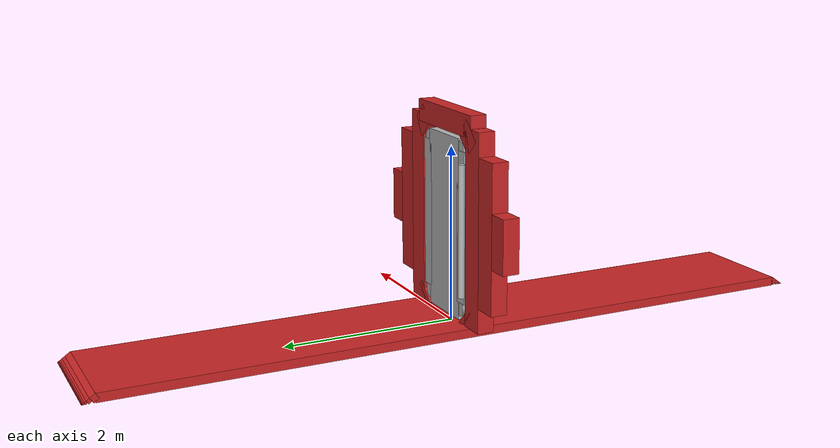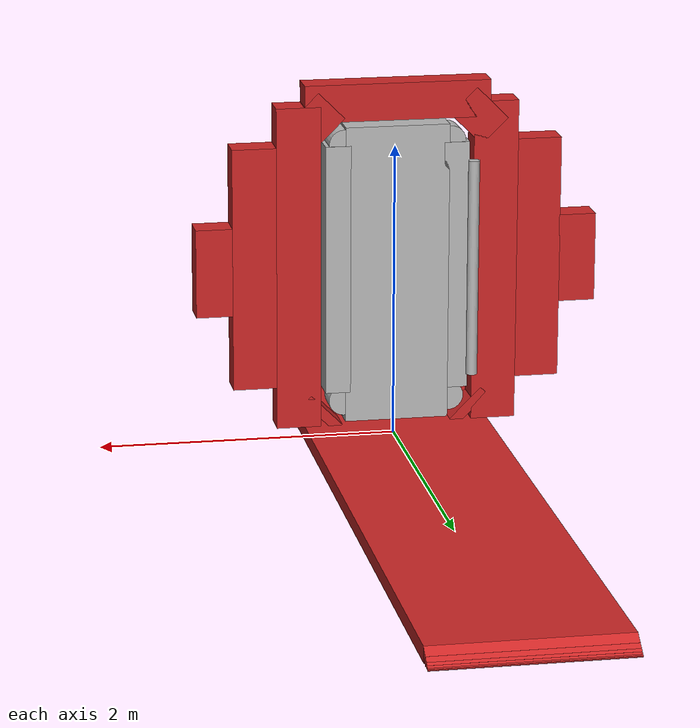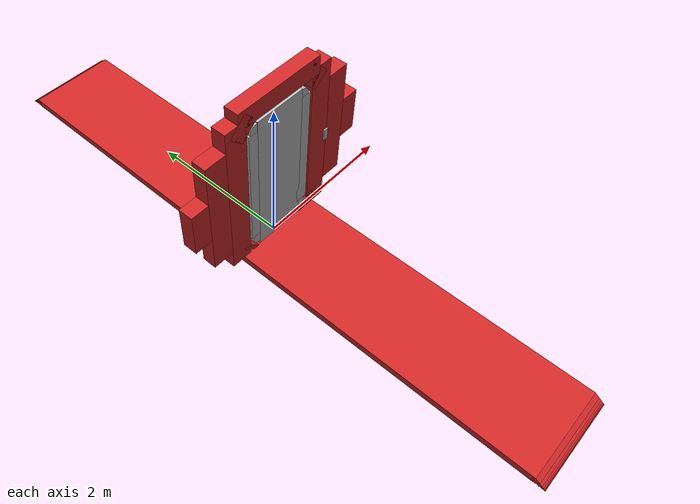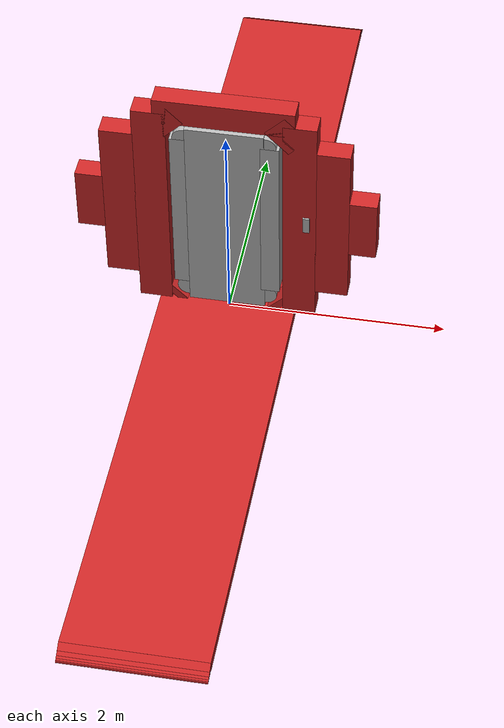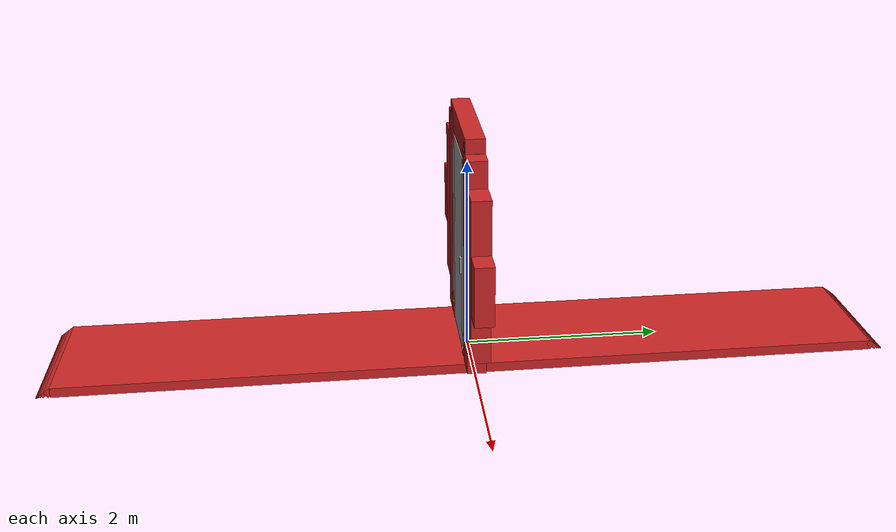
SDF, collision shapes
<?xml version="1.0" ?>
<sdf version="1.6">
  <model name="src_doorway">
    <pose>0 0 0 0 0 3.14159</pose>

    <!-- The big circular frame + the platform -->
    <model name="src_doorframe">
      <static>true</static>

      <link name="frame">

        <!-- Inertia, if needed -->
        <!-- Mass computed using density of aluminum 7050 (2800Kg/m3). -->
        <!-- m = (1.25*8.209*0.1)*2800 = 2873 Kg -->
        <inertial>
          <pose>0 0 0.05 0 0 0</pose>
          <mass>2873</mass>
          <inertia>
            <ixx>16895.63</ixx>
            <ixy>0</ixy>
            <ixz>0</ixz>
            <iyy>376.483</iyy>
            <iyz>0</iyz>
            <izz>17267.3286</izz>
          </inertia>
        </inertial>

        <!-- The platform with its ramps -->
        <collision name="platform">
          <pose>0 0 0.05 0 0 0</pose>
          <geometry>
            <box>
              <size>1.25 8.209 0.1</size>
            </box>
          </geometry>
          <surface>
            <contact>
              <ode>
                <kp>1e16</kp>
                <kd>100.0</kd>
                <max_vel>1000.0</max_vel>
                <min_depth>0.001</min_depth>
              </ode>
            </contact>
            <friction>
              <ode>
                <mu>1.5</mu>
                <mu2>1.5</mu2>
              </ode>
            </friction>
          </surface>
        </collision>
        <collision name="front_ramp_1">
          <pose>0 4.1135 0.05 0.96 0 0</pose>
          <geometry>
            <box>
              <size>1.25 0.072 0.072</size>
            </box>
          </geometry>
          <surface>
            <contact>
              <ode>
                <kp>1e16</kp>
                <kd>100.0</kd>
                <max_vel>1000.0</max_vel>
                <min_depth>0.001</min_depth>
              </ode>
            </contact>
            <friction>
              <ode>
                <mu>1.5</mu>
                <mu2>1.5</mu2>
              </ode>
            </friction>
          </surface>
        </collision>
        <collision name="front_ramp_2">
          <pose>0 4.1635 0.031 0.96 0 0</pose>
          <geometry>
            <box>
              <size>1.25 0.045 0.045</size>
            </box>
          </geometry>
          <surface>
            <contact>
              <ode>
                <kp>1e16</kp>
                <kd>100.0</kd>
                <max_vel>1000.0</max_vel>
                <min_depth>0.001</min_depth>
              </ode>
            </contact>
            <friction>
              <ode>
                <mu>1.5</mu>
                <mu2>1.5</mu2>
              </ode>
            </friction>
          </surface>
        </collision>
        <collision name="front_ramp_3">
          <pose>0 4.1935 0.02 0.96 0 0</pose>
          <geometry>
            <box>
              <size>1.25 0.028 0.028</size>
            </box>
          </geometry>
          <surface>
            <contact>
              <ode>
                <kp>1e16</kp>
                <kd>100.0</kd>
                <max_vel>1000.0</max_vel>
                <min_depth>0.001</min_depth>
              </ode>
            </contact>
            <friction>
              <ode>
                <mu>1.5</mu>
                <mu2>1.5</mu2>
              </ode>
            </friction>
          </surface>
        </collision>
        <collision name="front_ramp_4">
          <pose>0 4.2135 0.012 0.96 0 0</pose>
          <geometry>
            <box>
              <size>1.25 0.017 0.017</size>
            </box>
          </geometry>
          <surface>
            <contact>
              <ode>
                <kp>1e16</kp>
                <kd>100.0</kd>
                <max_vel>1000.0</max_vel>
                <min_depth>0.001</min_depth>
              </ode>
            </contact>
            <friction>
              <ode>
                <mu>1.5</mu>
                <mu2>1.5</mu2>
              </ode>
            </friction>
          </surface>
        </collision>
        <collision name="front_ramp_5">
          <pose>0 4.2235 0.008 0.96 0 0</pose>
          <geometry>
            <box>
              <size>1.25 0.012 0.012</size>
            </box>
          </geometry>
          <surface>
            <contact>
              <ode>
                <kp>1e16</kp>
                <kd>100.0</kd>
                <max_vel>1000.0</max_vel>
                <min_depth>0.001</min_depth>
              </ode>
            </contact>
            <friction>
              <ode>
                <mu>1.5</mu>
                <mu2>1.5</mu2>
              </ode>
            </friction>
          </surface>
        </collision>
        <collision name="front_ramp_6">
          <pose>0 4.231 0.005 0.96 0 0</pose>
          <geometry>
            <box>
              <size>1.25 0.008 0.008</size>
            </box>
          </geometry>
          <surface>
            <contact>
              <ode>
                <kp>1e16</kp>
                <kd>100.0</kd>
                <max_vel>1000.0</max_vel>
                <min_depth>0.001</min_depth>
              </ode>
            </contact>
            <friction>
              <ode>
                <mu>1.5</mu>
                <mu2>1.5</mu2>
              </ode>
            </friction>
          </surface>
        </collision>
        <collision name="front_ramp_7">
          <pose>0 4.2365 0.003 0.96 0 0</pose>
          <geometry>
            <box>
              <size>1.25 0.005 0.005</size>
            </box>
          </geometry>
          <surface>
            <contact>
              <ode>
                <kp>1e16</kp>
                <kd>100.0</kd>
                <max_vel>1000.0</max_vel>
                <min_depth>0.001</min_depth>
              </ode>
            </contact>
            <friction>
              <ode>
                <mu>1.5</mu>
                <mu2>1.5</mu2>
              </ode>
            </friction>
          </surface>
        </collision>
        <collision name="front_ramp_8">
          <pose>0 4.2405 0.002 0.96 0 0</pose>
          <geometry>
            <box>
              <size>1.25 0.0026 0.0026</size>
            </box>
          </geometry>
          <surface>
            <contact>
              <ode>
                <kp>1e16</kp>
                <kd>100.0</kd>
                <max_vel>1000.0</max_vel>
                <min_depth>0.001</min_depth>
              </ode>
            </contact>
            <friction>
              <ode>
                <mu>1.5</mu>
                <mu2>1.5</mu2>
              </ode>
            </friction>
          </surface>
        </collision>
        <collision name="back_ramp_1">
          <pose>0 -4.1135 0.05 -0.96 0 0</pose>
          <geometry>
            <box>
              <size>1.25 0.072 0.072</size>
            </box>
          </geometry>
          <surface>
            <contact>
              <ode>
                <kp>1e16</kp>
                <kd>100.0</kd>
                <max_vel>1000.0</max_vel>
                <min_depth>0.001</min_depth>
              </ode>
            </contact>
            <friction>
              <ode>
                <mu>1.5</mu>
                <mu2>1.5</mu2>
              </ode>
            </friction>
          </surface>
        </collision>
        <collision name="back_ramp_2">
          <pose>0 -4.1635 0.031 -0.96 0 0</pose>
          <geometry>
            <box>
              <size>1.25 0.045 0.045</size>
            </box>
          </geometry>
          <surface>
            <contact>
              <ode>
                <kp>1e16</kp>
                <kd>100.0</kd>
                <max_vel>1000.0</max_vel>
                <min_depth>0.001</min_depth>
              </ode>
            </contact>
            <friction>
              <ode>
                <mu>1.5</mu>
                <mu2>1.5</mu2>
              </ode>
            </friction>
          </surface>
        </collision>
        <collision name="back_ramp_3">
          <pose>0 -4.1935 0.02 -0.96 0 0</pose>
          <geometry>
            <box>
              <size>1.25 0.028 0.028</size>
            </box>
          </geometry>
          <surface>
            <contact>
              <ode>
                <kp>1e16</kp>
                <kd>100.0</kd>
                <max_vel>1000.0</max_vel>
                <min_depth>0.001</min_depth>
              </ode>
            </contact>
            <friction>
              <ode>
                <mu>1.5</mu>
                <mu2>1.5</mu2>
              </ode>
            </friction>
          </surface>
        </collision>
        <collision name="back_ramp_4">
          <pose>0 -4.2135 0.012 -0.96 0 0</pose>
          <geometry>
            <box>
              <size>1.25 0.017 0.017</size>
            </box>
          </geometry>
          <surface>
            <contact>
              <ode>
                <kp>1e16</kp>
                <kd>100.0</kd>
                <max_vel>1000.0</max_vel>
                <min_depth>0.001</min_depth>
              </ode>
            </contact>
            <friction>
              <ode>
                <mu>1.5</mu>
                <mu2>1.5</mu2>
              </ode>
            </friction>
          </surface>
        </collision>
        <collision name="back_ramp_5">
          <pose>0 -4.2235 0.008 -0.96 0 0</pose>
          <geometry>
            <box>
              <size>1.25 0.012 0.012</size>
            </box>
          </geometry>
          <surface>
            <contact>
              <ode>
                <kp>1e16</kp>
                <kd>100.0</kd>
                <max_vel>1000.0</max_vel>
                <min_depth>0.001</min_depth>
              </ode>
            </contact>
            <friction>
              <ode>
                <mu>1.5</mu>
                <mu2>1.5</mu2>
              </ode>
            </friction>
          </surface>
        </collision>
        <collision name="back_ramp_6">
          <pose>0 -4.231 0.005 -0.96 0 0</pose>
          <geometry>
            <box>
              <size>1.25 0.008 0.008</size>
            </box>
          </geometry>
          <surface>
            <contact>
              <ode>
                <kp>1e16</kp>
                <kd>100.0</kd>
                <max_vel>1000.0</max_vel>
                <min_depth>0.001</min_depth>
              </ode>
            </contact>
            <friction>
              <ode>
                <mu>1.5</mu>
                <mu2>1.5</mu2>
              </ode>
            </friction>
          </surface>
        </collision>
        <collision name="back_ramp_7">
          <pose>0 -4.2365 0.003 -0.96 0 0</pose>
          <geometry>
            <box>
              <size>1.25 0.005 0.005</size>
            </box>
          </geometry>
          <surface>
            <contact>
              <ode>
                <kp>1e16</kp>
                <kd>100.0</kd>
                <max_vel>1000</max_vel>
                <min_depth>0.001</min_depth>
              </ode>
            </contact>
            <friction>
              <ode>
                <mu>1.0</mu>
                <mu2>1.0</mu2>
              </ode>
            </friction>
          </surface>
        </collision>
        <collision name="back_ramp_8">
          <pose>0 -4.2405 0.002 -0.96 0 0</pose>
          <geometry>
            <box>
              <size>1.25 0.0026 0.0026</size>
            </box>
          </geometry>
          <surface>
            <contact>
              <ode>
                <kp>1e16</kp>
                <kd>100.0</kd>
                <max_vel>1000.0</max_vel>
                <min_depth>0.001</min_depth>
              </ode>
            </contact>
            <friction>
              <ode>
                <mu>1.5</mu>
                <mu2>1.5</mu2>
              </ode>
            </friction>
          </surface>
        </collision>

        <collision name="left_1">
          <pose>0.665 0 1.2 0 0 0</pose>
          <geometry>
            <box>
              <size>0.3 0.19 2.2</size>
            </box>
          </geometry>
          <surface>
            <contact>
              <ode>
                <kp>1e16</kp>
                <kd>100.0</kd>
                <max_vel>1000.0</max_vel>
                <min_depth>0.001</min_depth>
              </ode>
            </contact>
            <friction>
              <ode>
                <mu>1.5</mu>
                <mu2>1.5</mu2>
              </ode>
            </friction>
          </surface>
        </collision>
        <collision name="left_2">
          <pose>0.96 0 1.21 0 0 0</pose>
          <geometry>
            <box>
              <size>0.3 0.19 1.65</size>
            </box>
          </geometry>
          <surface>
            <contact>
              <ode>
                <kp>1e16</kp>
                <kd>100.0</kd>
                <max_vel>1000.0</max_vel>
                <min_depth>0.001</min_depth>
              </ode>
            </contact>
            <friction>
              <ode>
                <mu>1.5</mu>
                <mu2>1.5</mu2>
              </ode>
            </friction>
          </surface>
        </collision>
        <collision name="left_3">
          <pose>1.23 0 1.2 0 0 0</pose>
          <geometry>
            <box>
              <size>0.25 0.19 0.6</size>
            </box>
          </geometry>
          <surface>
            <contact>
              <ode>
                <kp>1e16</kp>
                <kd>100.0</kd>
                <max_vel>1000.0</max_vel>
                <min_depth>0.001</min_depth>
              </ode>
            </contact>
            <friction>
              <ode>
                <mu>1.5</mu>
                <mu2>1.5</mu2>
              </ode>
            </friction>
          </surface>
        </collision>

        <!-- Collision elements in the circular frame -->
        <collision name="right_1">
          <pose>-0.665 0 1.2 0 0 0</pose>
          <geometry>
            <box>
              <size>0.3 0.19 2.2</size>
            </box>
          </geometry>
          <surface>
            <contact>
              <ode>
                <kp>1e16</kp>
                <kd>100.0</kd>
                <max_vel>1000.0</max_vel>
                <min_depth>0.001</min_depth>
              </ode>
            </contact>
            <friction>
              <ode>
                <mu>1.5</mu>
                <mu2>1.5</mu2>
              </ode>
            </friction>
          </surface>
        </collision>
        <collision name="right_2">
          <pose>-0.96 0 1.21 0 0 0</pose>
          <geometry>
            <box>
              <size>0.3 0.19 1.65</size>
            </box>
          </geometry>
          <surface>
            <contact>
              <ode>
                <kp>1e16</kp>
                <kd>100.0</kd>
                <max_vel>1000.0</max_vel>
                <min_depth>0.001</min_depth>
              </ode>
            </contact>
            <friction>
              <ode>
                <mu>1.5</mu>
                <mu2>1.5</mu2>
              </ode>
            </friction>
          </surface>
        </collision>
        <collision name="right_3">
          <pose>-1.23 0 1.2 0 0 0</pose>
          <geometry>
            <box>
              <size>0.25 0.19 0.6</size>
            </box>
          </geometry>
          <surface>
            <contact>
              <ode>
                <kp>1e16</kp>
                <kd>100.0</kd>
                <max_vel>1000.0</max_vel>
                <min_depth>0.001</min_depth>
              </ode>
            </contact>
            <friction>
              <ode>
                <mu>1.5</mu>
                <mu2>1.5</mu2>
              </ode>
            </friction>
          </surface>
        </collision>

        <collision name="top_1">
          <pose>0 0 2.32 0 0 0</pose>
          <geometry>
            <box>
              <size>1.25 0.19 0.25</size>
            </box>
          </geometry>
          <surface>
            <contact>
              <ode>
                <kp>1e16</kp>
                <kd>100.0</kd>
                <max_vel>1000.0</max_vel>
                <min_depth>0.001</min_depth>
              </ode>
            </contact>
            <friction>
              <ode>
                <mu>1.5</mu>
                <mu2>1.5</mu2>
              </ode>
            </friction>
          </surface>
        </collision>

        <collision name="diagonal_top_left">
          <pose>0.55 0 2.2 0 0.785 0</pose>
          <geometry>
            <box>
              <size>0.3 0.19 0.25</size>
            </box>
          </geometry>
          <surface>
            <contact>
              <ode>
                <kp>1e16</kp>
                <kd>100.0</kd>
                <max_vel>1000.0</max_vel>
                <min_depth>0.001</min_depth>
              </ode>
            </contact>
            <friction>
              <ode>
                <mu>1.5</mu>
                <mu2>1.5</mu2>
              </ode>
            </friction>
          </surface>
        </collision>

        <collision name="diagonal_top_right">
          <pose>-0.55 0 2.2 0 -0.785 0</pose>
          <geometry>
            <box>
              <size>0.3 0.19 0.25</size>
            </box>
          </geometry>
          <surface>
            <contact>
              <ode>
                <kp>1e16</kp>
                <kd>100.0</kd>
                <max_vel>1000.0</max_vel>
                <min_depth>0.001</min_depth>
              </ode>
            </contact>
            <friction>
              <ode>
                <mu>1.5</mu>
                <mu2>1.5</mu2>
              </ode>
            </friction>
          </surface>
        </collision>

        <collision name="diagonal_bottom_left">
          <pose>0.5 0 0.185 0 -0.785 0</pose>
          <geometry>
            <box>
              <size>0.3 0.19 0.07</size>
            </box>
          </geometry>
          <surface>
            <contact>
              <ode>
                <kp>1e16</kp>
                <kd>100.0</kd>
                <max_vel>1000.0</max_vel>
                <min_depth>0.001</min_depth>
              </ode>
            </contact>
            <friction>
              <ode>
                <mu>1.5</mu>
                <mu2>1.5</mu2>
              </ode>
            </friction>
          </surface>
        </collision>

        <collision name="diagonal_bottom_right">
          <pose>-0.5 0 0.185 0 0.785 0</pose>
          <geometry>
            <box>
              <size>0.3 0.19 0.07</size>
            </box>
          </geometry>
          <surface>
            <contact>
              <ode>
                <kp>1e16</kp>
                <kd>100.0</kd>
                <max_vel>1000.0</max_vel>
                <min_depth>0.001</min_depth>
              </ode>
            </contact>
            <friction>
              <ode>
                <mu>1.5</mu>
                <mu2>1.5</mu2>
              </ode>
            </friction>
          </surface>
        </collision>

        <visual name="visual">
          <geometry>
            <mesh>
              <uri>model://../model_source/models/src_doorway/meshes/doorway_base.dae</uri>
            </mesh>
          </geometry>
        </visual>

        <!-- Start line -->
        <visual name="start_line">
          <pose>0 3 0.1 0 0 0</pose>
          <geometry>
            <box>
              <size>1.25 0.05 0.001</size>
            </box>
          </geometry>
          <material>
            <script>
              <uri>file://media/materials/scripts/gazebo.material</uri>
              <name>Gazebo/Red</name>
            </script>
          </material>
        </visual>

        <!-- Finish line -->
        <visual name="finish_line">
          <pose>0 -1 0.1 0 0 0</pose>
          <geometry>
            <box>
              <size>1.25 0.05 0.001</size>
            </box>
          </geometry>
          <material>
            <script>
              <uri>file://media/materials/scripts/gazebo.material</uri>
              <name>Gazebo/Red</name>
            </script>
          </material>
        </visual>

      </link>

    </model>

    <!-- The door -->
    <model name="src_door">

      <link name="door">
        <pose>0 0 1 0 0 0</pose>

        <!-- m = (0.7*0.19*2.03)*2700 = 2873 Kg -->
        <inertial>
          <pose>0 0 0.14 0 0 0</pose>
          <mass>182</mass>
          <inertia>
            <ixx>63.04</ixx>
            <ixy>0</ixy>
            <ixz>0</ixz>
            <iyy>69.932</iyy>
            <iyz>0</iyz>
            <izz>7.979</izz>
          </inertia>
        </inertial>

        <collision name="center">
          <pose>0 0 0.14 0 0 0</pose>
          <geometry>
            <box>
              <size>0.7 0.19 2.03</size>
            </box>
          </geometry>
          <surface>
            <contact>
              <ode>
                <kp>1e16</kp>
                <kd>100.0</kd>
                <max_vel>1000.0</max_vel>
                <min_depth>0.001</min_depth>
              </ode>
            </contact>
            <friction>
              <ode>
                <mu>1.5</mu>
                <mu2>1.5</mu2>
              </ode>
            </friction>
          </surface>
        </collision>
        <collision name="left">
          <pose>-0.4 0 0.18 0 0 0</pose>
          <geometry>
            <box>
              <size>0.17 0.19 1.7</size>
            </box>
          </geometry>
          <surface>
            <contact>
              <ode>
                <kp>1e16</kp>
                <kd>100.0</kd>
                <max_vel>1000.0</max_vel>
                <min_depth>0.001</min_depth>
              </ode>
            </contact>
            <friction>
              <ode>
                <mu>1.5</mu>
                <mu2>1.5</mu2>
              </ode>
            </friction>
          </surface>
        </collision>
        <collision name="right">
          <pose>0.4 0 0.18 0 0 0</pose>
          <geometry>
            <box>
              <size>0.17 0.19 1.7</size>
            </box>
          </geometry>
          <surface>
            <contact>
              <ode>
                <kp>1e16</kp>
                <kd>100.0</kd>
                <max_vel>1000.0</max_vel>
                <min_depth>0.001</min_depth>
              </ode>
            </contact>
            <friction>
              <ode>
                <mu>1.5</mu>
                <mu2>1.5</mu2>
              </ode>
            </friction>
          </surface>
        </collision>
        <collision name="top_left">
          <pose>-0.36 0 1.04 1.57 0 0</pose>
          <geometry>
            <cylinder>
              <radius>0.1</radius>
              <length>0.18</length>
            </cylinder>
          </geometry>
          <surface>
            <contact>
              <ode>
                <kp>1e16</kp>
                <kd>100.0</kd>
                <max_vel>1000.0</max_vel>
                <min_depth>0.001</min_depth>
              </ode>
            </contact>
            <friction>
              <ode>
                <mu>1.5</mu>
                <mu2>1.5</mu2>
              </ode>
            </friction>
          </surface>
        </collision>
        <collision name="top_right">
          <pose>0.36 0 1.04 1.57 0 0</pose>
          <geometry>
            <cylinder>
              <radius>0.1</radius>
              <length>0.18</length>
            </cylinder>
          </geometry>
          <surface>
            <contact>
              <ode>
                <kp>1e16</kp>
                <kd>100.0</kd>
                <max_vel>1000.0</max_vel>
                <min_depth>0.001</min_depth>
              </ode>
            </contact>
            <friction>
              <ode>
                <mu>1.5</mu>
                <mu2>1.5</mu2>
              </ode>
            </friction>
          </surface>
        </collision>
        <collision name="bottom_left">
          <pose>-0.36 0 -0.73 1.57 0 0</pose>
          <geometry>
            <cylinder>
              <radius>0.1</radius>
              <length>0.18</length>
            </cylinder>
          </geometry>
          <surface>
            <contact>
              <ode>
                <kp>1e16</kp>
                <kd>100.0</kd>
                <max_vel>1000.0</max_vel>
                <min_depth>0.001</min_depth>
              </ode>
            </contact>
            <friction>
              <ode>
                <mu>1.5</mu>
                <mu2>1.5</mu2>
              </ode>
            </friction>
          </surface>
        </collision>
        <collision name="bottom_right">
          <pose>0.36 0 -0.73 1.57 0 0</pose>
          <geometry>
            <cylinder>
              <radius>0.1</radius>
              <length>0.18</length>
            </cylinder>
          </geometry>
          <surface>
            <contact>
              <ode>
                <kp>1e16</kp>
                <kd>100.0</kd>
                <max_vel>1000.0</max_vel>
                <min_depth>0.001</min_depth>
              </ode>
            </contact>
            <friction>
              <ode>
                <mu>1.5</mu>
                <mu2>1.5</mu2>
              </ode>
            </friction>
          </surface>
        </collision>

        <collision name="hinge">
          <pose>0.507 -0.135 0.17 0 0 0</pose>
          <geometry>
            <cylinder>
              <radius>0.038</radius>
              <length>1.48</length>
            </cylinder>
          </geometry>
          <surface>
            <contact>
              <ode>
                <kp>1e16</kp>
                <kd>100.0</kd>
                <max_vel>1000.0</max_vel>
                <min_depth>0.001</min_depth>
              </ode>
            </contact>
            <friction>
              <ode>
                <mu>1.5</mu>
                <mu2>1.5</mu2>
              </ode>
            </friction>
          </surface>
        </collision>

        <visual name="visual">
          <pose>0 0 -1 0 0 0</pose>
          <geometry>
            <mesh>
              <uri>model://../model_source/models/src_doorway/meshes/doorway_door.dae</uri>
            </mesh>
          </geometry>
        </visual>
      </link>

      <!-- The button -->
      <link name="button">
        <pose>-0.735 0.15 1.247 0 0 0</pose>

        <inertial>
          <mass>0.2</mass>
          <inertia>
            <ixx>0.000432</ixx>
            <ixy>0</ixy>
            <ixz>0</ixz>
            <iyy>0.000487</iyy>
            <iyz>0</iyz>
            <izz>0.0000654</izz>
          </inertia>
        </inertial>

        <collision name="collision">
          <geometry>
            <box>
              <size>0.06 0.018 0.16</size>
            </box>
          </geometry>
          <surface>
            <contact>
              <ode>
                <kp>1e16</kp>
                <kd>100.0</kd>
                <max_vel>1000.0</max_vel>
                <min_depth>0.001</min_depth>
              </ode>
            </contact>
            <friction>
              <ode>
                <mu>1.5</mu>
                <mu2>1.5</mu2>
              </ode>
            </friction>
          </surface>
        </collision>

        <visual name="visual">
          <geometry>
            <box>
              <size>0.06 0.018 0.16</size>
            </box>
          </geometry>
          <material>
            <script>
              <uri>model://../model_source/models/src_doorway/materials/scripts</uri>
              <uri>model://../model_source/models/src_doorway/materials/textures</uri>
              <name>src_doorway_button/Diffuse</name>
            </script>
          </material>
        </visual>
      </link>
    </model>

    <!-- Joint connecting the frame and the door -->
    <joint name="hinge" type="revolute">
      <parent>src_doorframe::frame</parent>
      <child>src_door::door</child>
      <pose>0.5 -0.14 0 0 0 0</pose>
      <axis>
        <xyz>0 0 1</xyz>
        <limit>
          <lower>0</lower>
          <upper>3</upper>
        </limit>
        <dynamics>
          <damping>1.0</damping>
          <friction>1.0</friction>
        </dynamics>
        <use_parent_model_frame>true</use_parent_model_frame>
      </axis>
      <physics>
        <ode>
          <cfm_damping>1</cfm_damping>
        </ode>
      </physics>
    </joint>

    <!-- Joint to make the button pushable -->
    <joint name="button_mechanism" type="prismatic">
      <parent>src_doorframe::frame</parent>
      <child>src_door::button</child>
      <pose>-0.735 0.15 1.247 0 0 0</pose>
      <axis>
        <xyz>0 1 0</xyz>
        <limit>
          <lower>0</lower>
          <upper>0.01</upper>
        </limit>
        <dynamics>
          <damping>10</damping>
          <spring_stiffness>800</spring_stiffness>
          <spring_reference>0</spring_reference>
        </dynamics>
        <use_parent_model_frame>true</use_parent_model_frame>
      </axis>
      <physics>
        <ode>
          <cfm_damping>1</cfm_damping>
        </ode>
      </physics>
    </joint>
  </model>
</sdf>
